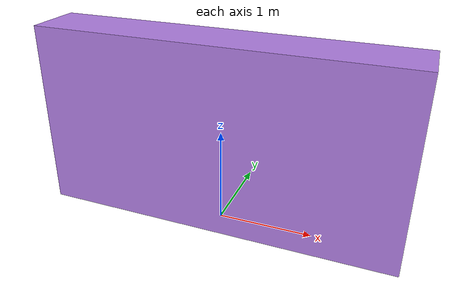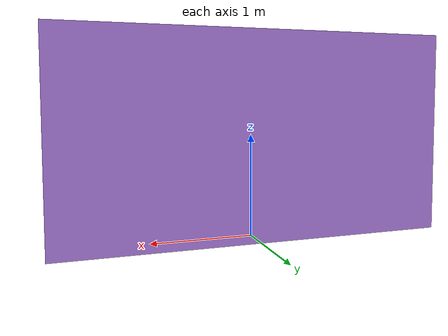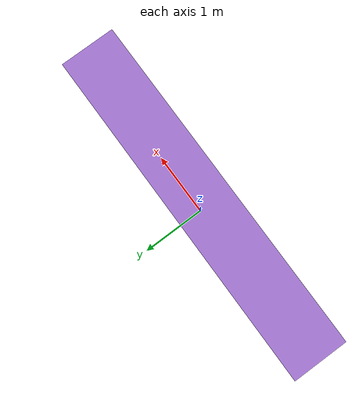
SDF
<?xml version="1.0"?>
<sdf version="1.7">
  <model name="delivery_shelf">
    <static>true</static>
    <link name="shelf_link">
      <pose>0 0 1 0 0 0</pose>
      <collision name="shelf_collision">
        <geometry>
          <box>
            <size>3.81 0.6096 2.0</size>
          </box>
        </geometry>
      </collision>
      <visual name="shelf_visual">
        <geometry>
          <box>
            <size>3.81 0.6096 2.0</size>
          </box>
        </geometry>
        <material>
          <ambient>0.6 0.4 0.8 1</ambient>
          <diffuse>0.7 0.5 0.9 1</diffuse>
          <specular>0.3 0.2 0.4 1</specular>
        </material>
      </visual>
      <inertial>
        <mass>80</mass>
        <inertia>
          <ixx>27.12</ixx>
          <ixy>0</ixy>
          <ixz>0</ixz>
          <iyy>98.46</iyy>
          <iyz>0</iyz>
          <izz>124.89</izz>
        </inertia>
      </inertial>
    </link>
  </model>
</sdf>
